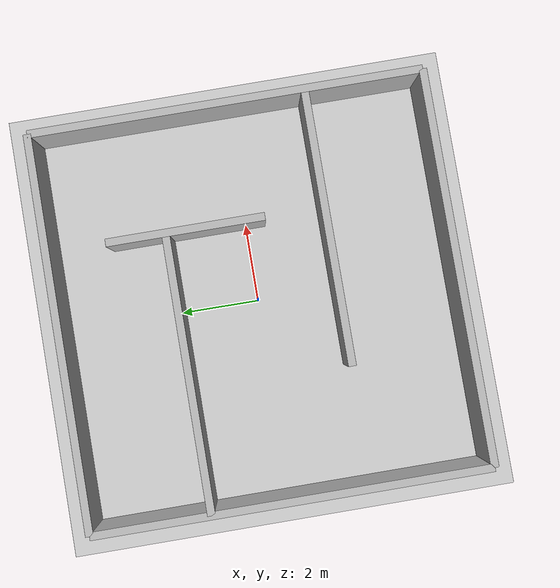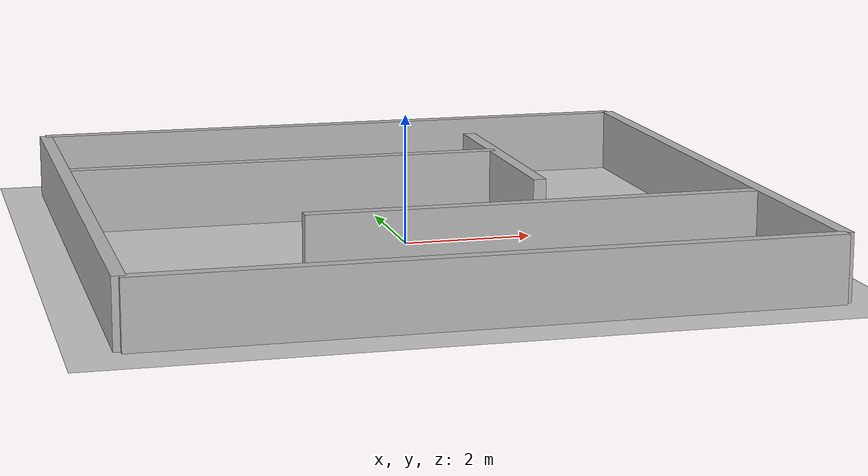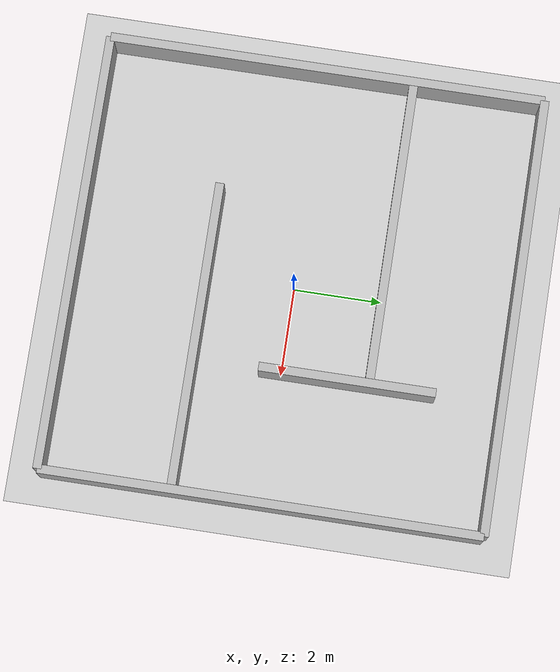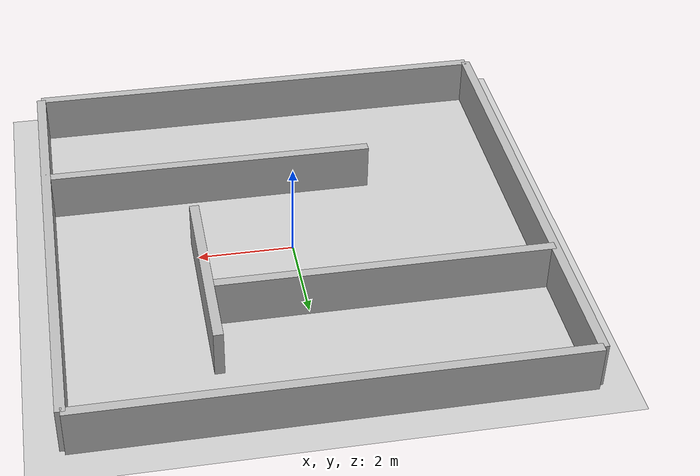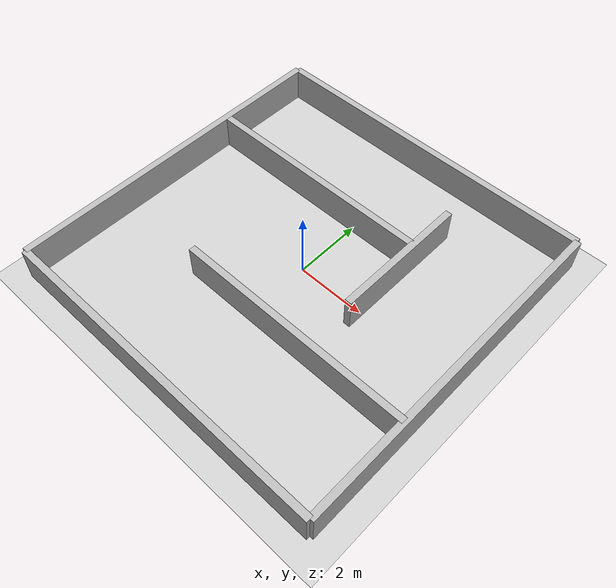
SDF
<?xml version="1.0" ?>
<sdf version="1.6">
  <world name="simple_house_world">
    <include><uri>model://sun</uri></include>
    <include><uri>model://ground_plane</uri></include>

    <model name="outer_wall_north">
      <static>true</static>
      <link name="link"><pose>0 5 0.5 0 0 0</pose>
        <collision name="c"><geometry><box><size>10 0.2 1</size></box></geometry></collision>
        <visual name="v"><geometry><box><size>10 0.2 1</size></box></geometry></visual>
      </link>
    </model>
    <model name="outer_wall_south">
      <static>true</static>
      <link name="link"><pose>0 -5 0.5 0 0 0</pose>
        <collision name="c"><geometry><box><size>10 0.2 1</size></box></geometry></collision>
        <visual name="v"><geometry><box><size>10 0.2 1</size></box></geometry></visual>
      </link>
    </model>
    <model name="outer_wall_east">
      <static>true</static>
      <link name="link"><pose>5 0 0.5 0 0 0</pose>
        <collision name="c"><geometry><box><size>0.2 10 1</size></box></geometry></collision>
        <visual name="v"><geometry><box><size>0.2 10 1</size></box></geometry></visual>
      </link>
    </model>
    <model name="outer_wall_west">
      <static>true</static>
      <link name="link"><pose>-5 0 0.5 0 0 0</pose>
        <collision name="c"><geometry><box><size>0.2 10 1</size></box></geometry></collision>
        <visual name="v"><geometry><box><size>0.2 10 1</size></box></geometry></visual>
      </link>
    </model>

    <model name="inner_wall_1">
      <static>true</static>
      <link name="link"><pose>-1.5 2 0.5 0 0 0</pose>
        <collision name="c"><geometry><box><size>7 0.2 1</size></box></geometry></collision>
        <visual name="v"><geometry><box><size>7 0.2 1</size></box></geometry></visual>
      </link>
    </model>
    <model name="inner_wall_2">
      <static>true</static>
      <link name="link"><pose>1.5 -2 0.5 0 0 0</pose>
        <collision name="c"><geometry><box><size>7 0.2 1</size></box></geometry></collision>
        <visual name="v"><geometry><box><size>7 0.2 1</size></box></geometry></visual>
      </link>
    </model>
    <model name="inner_wall_3">
      <static>true</static>
      <link name="link"><pose>2 1.5 0.5 0 0 0</pose>
        <collision name="c"><geometry><box><size>0.2 4 1</size></box></geometry></collision>
        <visual name="v"><geometry><box><size>0.2 4 1</size></box></geometry></visual>
      </link>
    </model>
  </world>
</sdf>
